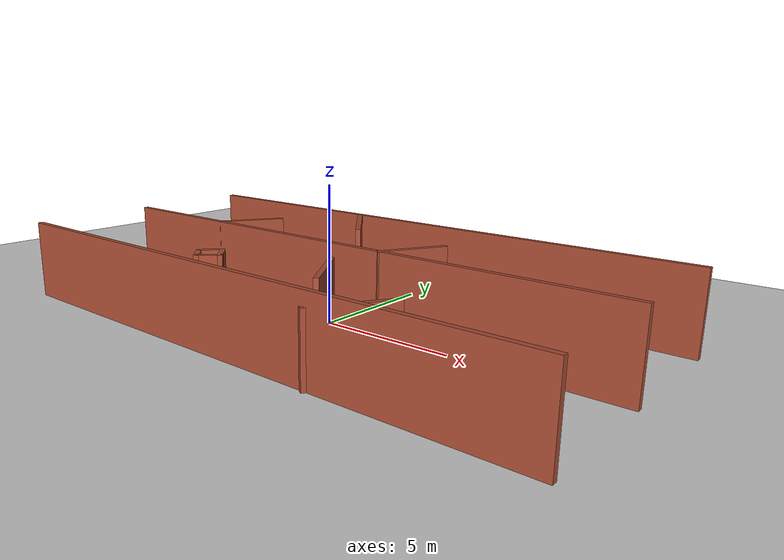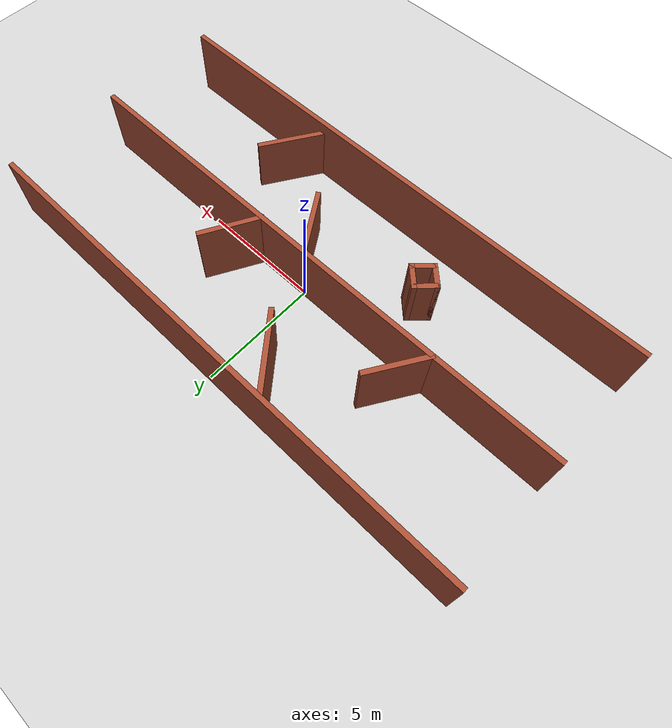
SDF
<sdf version="1.7">
 <world name="default">
  <light name="sun" type="directional">
   <pose>0 0 10 0 -0 0</pose>
   <diffuse>0.8 0.8 0.8 1</diffuse>
   <specular>0.2 0.2 0.2 1</specular>
   <attenuation>
    <range>1000</range>
    <constant>0.9</constant>
    <linear>0.01</linear>
    <quadratic>0.001</quadratic>
   </attenuation>
   <direction>-0.5 0.1 -0.9</direction>
   <spot><inner_angle>0</inner_angle><outer_angle>0</outer_angle><falloff>0</falloff></spot>
  </light>
  <model name="ground_plane">
   <static>1</static>
   <link name="link">
    <collision name="collision">
     <geometry><plane><normal>0 0 1</normal><size>100 100</size></plane></geometry>
     <surface><friction><ode><mu>100</mu><mu2>50</mu2></ode></friction></surface>
    </collision>
    <visual name="visual">
     <cast_shadows>0</cast_shadows>
     <geometry><plane><normal>0 0 1</normal><size>100 100</size></plane></geometry>
     <material>
      <script><uri>file://media/materials/scripts/gazebo.material</uri><name>Gazebo/Grey</name></script>
     </material>
    </visual>
   </link>
  </model>
  <gravity>0 0 -9.8</gravity>
  <magnetic_field>6e-06 2.3e-05 -4.2e-05</magnetic_field>
  <atmosphere type="adiabatic"/>
  <physics name="default_physics" default="0" type="ode">
   <max_step_size>0.001</max_step_size>
   <real_time_factor>1</real_time_factor>
   <real_time_update_rate>1000</real_time_update_rate>
  </physics>
  <scene><ambient>0.4 0.4 0.4 1</ambient><background>0.7 0.7 0.7 1</background><shadows>1</shadows></scene>
  <audio><device>default</device></audio>
  <spherical_coordinates>
   <surface_model>EARTH_WGS84</surface_model>
   <latitude_deg>0</latitude_deg>
   <longitude_deg>0</longitude_deg>
   <elevation>0</elevation>
   <heading_deg>0</heading_deg>
  </spherical_coordinates>
  <model name="walls">
   <link name="Wall_0">
    <collision name="Wall_0_Collision">
     <geometry><box><size>22.2 0.2 3</size></box></geometry>
     <pose>0 0 1.5 0 -0 0</pose>
    </collision>
    <visual name="Wall_0_Visual">
     <pose>0 0 1.5 0 -0 0</pose>
     <geometry><box><size>22.2 0.2 3</size></box></geometry>
     <material>
      <script><uri>file://media/materials/scripts/gazebo.material</uri><name>Gazebo/Bricks</name></script>
      <ambient>1 1 1 1</ambient>
     </material>
     <meta><layer>0</layer></meta>
    </visual>
    <pose>0 5 0 0 -0 0</pose>
   </link>
   <link name="Wall_10">
    <collision name="Wall_10_Collision">
     <geometry><box><size>2.6 0.2 3</size></box></geometry>
     <pose>0 0 1.5 0 -0 0</pose>
    </collision>
    <visual name="Wall_10_Visual">
     <pose>0 0 1.5 0 -0 0</pose>
     <geometry><box><size>2.6 0.2 3</size></box></geometry>
     <material>
      <script><uri>file://media/materials/scripts/gazebo.material</uri><name>Gazebo/Bricks</name></script>
      <ambient>1 1 1 1</ambient>
     </material>
     <meta><layer>0</layer></meta>
    </visual>
    <pose>2.8 1.05 0 0 -0 1.07437</pose>
   </link>
   <link name="Wall_12">
    <collision name="Wall_12_Collision">
     <geometry><box><size>1.04853 0.2 2.5</size></box></geometry>
     <pose>0 0 1.25 0 -0 0</pose>
    </collision>
    <visual name="Wall_12_Visual">
     <pose>0 0 1.25 0 -0 0</pose>
     <geometry><box><size>1.04853 0.2 2.5</size></box></geometry>
     <material>
      <script><uri>file://media/materials/scripts/gazebo.material</uri><name>Gazebo/Bricks</name></script>
      <ambient>1 1 1 1</ambient>
     </material>
     <meta><layer>0</layer></meta>
    </visual>
    <pose>-3.9 -2.8 0 0 -0 -0.785398</pose>
   </link>
   <link name="Wall_14">
    <collision name="Wall_14_Collision">
     <geometry><box><size>1.04853 0.2 2.5</size></box></geometry>
     <pose>0 0 1.25 0 -0 0</pose>
    </collision>
    <visual name="Wall_14_Visual">
     <pose>0 0 1.25 0 -0 0</pose>
     <geometry><box><size>1.04853 0.2 2.5</size></box></geometry>
     <material>
      <script><uri>file://media/materials/scripts/gazebo.material</uri><name>Gazebo/Bricks</name></script>
      <ambient>1 1 1 1</ambient>
     </material>
     <meta><layer>0</layer></meta>
    </visual>
    <pose>-3.9 -2.2 0 0 -0 0.785398</pose>
   </link>
   <link name="Wall_16">
    <collision name="Wall_16_Collision">
     <geometry><box><size>1.04853 0.2 2.5</size></box></geometry>
     <pose>0 0 1.25 0 -0 0</pose>
    </collision>
    <visual name="Wall_16_Visual">
     <pose>0 0 1.25 0 -0 0</pose>
     <geometry><box><size>1.04853 0.2 2.5</size></box></geometry>
     <material>
      <script><uri>file://media/materials/scripts/gazebo.material</uri><name>Gazebo/Bricks</name></script>
      <ambient>1 1 1 1</ambient>
     </material>
     <meta><layer>0</layer></meta>
    </visual>
    <pose>-3.3 -2.2 0 0 -0 -0.785398</pose>
   </link>
   <link name="Wall_18">
    <collision name="Wall_18_Collision">
     <geometry><box><size>1.04853 0.2 2.5</size></box></geometry>
     <pose>0 0 1.25 0 -0 0</pose>
    </collision>
    <visual name="Wall_18_Visual">
     <pose>0 0 1.25 0 -0 0</pose>
     <geometry><box><size>1.04853 0.2 2.5</size></box></geometry>
     <material>
      <script><uri>file://media/materials/scripts/gazebo.material</uri><name>Gazebo/Bricks</name></script>
      <ambient>1 1 1 1</ambient>
     </material>
     <meta><layer>0</layer></meta>
    </visual>
    <pose>-3.3 -2.8 0 0 -0 0.785398</pose>
   </link>
   <link name="Wall_2">
    <collision name="Wall_2_Collision">
     <geometry><box><size>22.2 0.2 3</size></box></geometry>
     <pose>0 0 1.5 0 -0 0</pose>
    </collision>
    <visual name="Wall_2_Visual">
     <pose>0 0 1.5 0 -0 0</pose>
     <geometry><box><size>22.2 0.2 3</size></box></geometry>
     <material>
      <script><uri>file://media/materials/scripts/gazebo.material</uri><name>Gazebo/Bricks</name></script>
      <ambient>1 1 1 1</ambient>
     </material>
     <meta><layer>0</layer></meta>
    </visual>
   </link>
   <link name="Wall_20">
    <collision name="Wall_20_Collision">
     <geometry><box><size>3.03019 0.2 2.5</size></box></geometry>
     <pose>0 0 1.25 0 -0 0</pose>
    </collision>
    <visual name="Wall_20_Visual">
     <pose>0 0 1.25 0 -0 0</pose>
     <geometry><box><size>3.03019 0.2 2.5</size></box></geometry>
     <material>
      <script><uri>file://media/materials/scripts/gazebo.material</uri><name>Gazebo/Bricks</name></script>
      <ambient>1 1 1 1</ambient>
     </material>
     <meta><layer>0</layer></meta>
    </visual>
    <pose>0.95 -1.3 0 0 -0 -1.0122</pose>
   </link>
   <link name="Wall_22">
    <collision name="Wall_22_Collision">
     <geometry><box><size>3.03019 0.2 2.5</size></box></geometry>
     <pose>0 0 1.25 0 -0 0</pose>
    </collision>
    <visual name="Wall_22_Visual">
     <pose>0 0 1.25 0 -0 0</pose>
     <geometry><box><size>3.03019 0.2 2.5</size></box></geometry>
     <material>
      <script><uri>file://media/materials/scripts/gazebo.material</uri><name>Gazebo/Bricks</name></script>
      <ambient>1 1 1 1</ambient>
     </material>
     <meta><layer>0</layer></meta>
    </visual>
    <pose>4.35 -3.9 0 0 -0 -2.1294</pose>
   </link>
   <link name="Wall_4">
    <collision name="Wall_4_Collision">
     <geometry><box><size>22.2 0.2 3</size></box></geometry>
     <pose>0 0 1.5 0 -0 0</pose>
    </collision>
    <visual name="Wall_4_Visual">
     <pose>0 0 1.5 0 -0 0</pose>
     <geometry><box><size>22.2 0.2 3</size></box></geometry>
     <material>
      <script><uri>file://media/materials/scripts/gazebo.material</uri><name>Gazebo/Bricks</name></script>
      <ambient>1 1 1 1</ambient>
     </material>
     <meta><layer>0</layer></meta>
    </visual>
    <pose>0 -5 0 0 -0 0</pose>
   </link>
   <link name="Wall_6">
    <collision name="Wall_6_Collision">
     <geometry><box><size>2.6 0.2 3</size></box></geometry>
     <pose>0 0 1.5 0 -0 0</pose>
    </collision>
    <visual name="Wall_6_Visual">
     <pose>0 0 1.5 0 -0 0</pose>
     <geometry><box><size>2.6 0.2 3</size></box></geometry>
     <material>
      <script><uri>file://media/materials/scripts/gazebo.material</uri><name>Gazebo/Bricks</name></script>
      <ambient>1 1 1 1</ambient>
     </material>
     <meta><layer>0</layer></meta>
    </visual>
    <pose>-5.25 1.05 0 0 -0 1.0122</pose>
   </link>
   <link name="Wall_8">
    <collision name="Wall_8_Collision">
     <geometry><box><size>3.26105 0.2 3</size></box></geometry>
     <pose>0 0 1.5 0 -0 0</pose>
    </collision>
    <visual name="Wall_8_Visual">
     <pose>0 0 1.5 0 -0 0</pose>
     <geometry><box><size>3.26105 0.2 3</size></box></geometry>
     <material>
      <script><uri>file://media/materials/scripts/gazebo.material</uri><name>Gazebo/Bricks</name></script>
      <ambient>1 1 1 1</ambient>
     </material>
     <meta><layer>0</layer></meta>
    </visual>
    <pose>-1.75 3.7 0 0 -0 -0.901157</pose>
   </link>
   <static>1</static>
  </model>
 </world>
</sdf>
